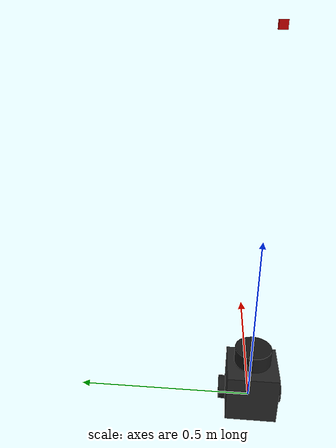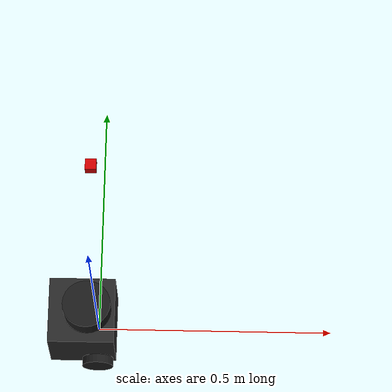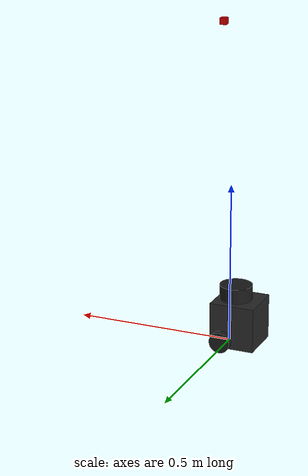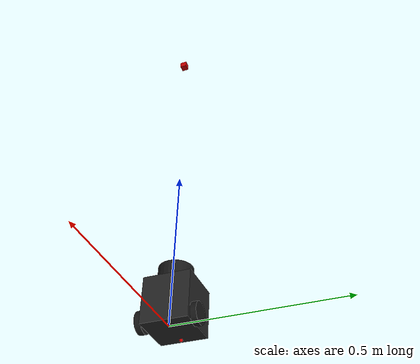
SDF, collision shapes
<?xml version="1.0" ?>
<sdf version="1.5">
  <model name="turtlebot3_burger">
    <pose>0.0 0.0 0.0 0.0 0.0 0.0</pose>

    <link name="base_footprint">
      <inertial>
        <inertia>
          <ixx>0.0000001</ixx>
          <ixy>0.0</ixy>
          <ixz>0.0</ixz>
          <iyy>0.0000001</iyy>
          <iyz>0.0</iyz>
          <izz>0.0000001</izz>
        </inertia>
        <mass>0.0001</mass>
      </inertial>
    </link>

    <link name="base_link">

      <inertial>
        <pose>-0.032 0 0.0 0 0 0</pose>
        <inertia>
          <ixx>0.023</ixx> <!-- 0.0023 helyett -->
          <ixy>0.0</ixy>
          <ixz>0.0</ixz>
          <iyy>0.023</iyy> <!-- 0.0023 helyett -->
          <iyz>0.0</iyz>
          <izz>0.00196</izz>
        </inertia>
        <mass>0.8</mass>
      </inertial>

      <collision name="base_collision">
        <pose>-0.032 0 0.070 0 0 0</pose>
        <geometry>
          <box>
            <size>0.140 0.140 0.140</size>
          </box>
        </geometry>
      </collision>

      <visual name="base_visual">
        <pose>-0.032 0 0 0 0 0</pose>
        <geometry>
          <mesh>
            <uri>model://turtlebot3_common/meshes/burger_base.stl</uri>
            <scale>0.001 0.001 0.001</scale>
          </mesh>
        </geometry>
        <material>
          <ambient>0.1 0.1 0.1 1</ambient>
          <diffuse>0.15 0.15 0.15 1</diffuse>
          <specular>0 0 0 0</specular>
          <emissive>0 0 0 1</emissive>
        </material>
      </visual>
    </link>

    <link name="imu_link">

      <inertial>
        <inertia>
          <ixx>0.0000001</ixx>
          <ixy>0.0</ixy>
          <ixz>0.0</ixz>
          <iyy>0.0000001</iyy>
          <iyz>0.0</iyz>
          <izz>0.0000001</izz>
        </inertia>
        <mass>0.01</mass>
      </inertial>

      <sensor name="tb3_imu" type="imu">
        <always_on>1</always_on>
        <update_rate>50</update_rate>
        <visualize>true</visualize>
        <topic>imu</topic>
        <enable_metrics>true</enable_metrics>
        <gz_frame_id>imu_link</gz_frame_id>
      </sensor>
    </link>

    <link name="base_scan">
      <inertial>
        <pose>-0.020 0 0.0261 0 0 0</pose>
        <inertia>
          <ixx>0.0001</ixx>
          <ixy>0.000</ixy>
          <ixz>0.000</ixz>
          <iyy>0.0001</iyy>
          <iyz>0.000</iyz>
          <izz>0.00014</izz>
        </inertia>
        <mass>0.2</mass>
      </inertial>

      <collision name="lidar_sensor_collision">
        <pose>-0.020 0 0.161 0 0 0</pose>
        <geometry>
          <cylinder>
            <radius>0.0508</radius>
            <length>0.05</length>
          </cylinder>
        </geometry>
      </collision>

      <visual name="lidar_sensor_visual">
        <pose>-0.032 0 0.171 0 0 0</pose>
        <geometry>
          <mesh>
            <uri>model://turtlebot3_common/meshes/lidar.stl</uri>
            <scale>0.001 0.001 0.001</scale>
          </mesh>
        </geometry>
        <material>
          <ambient>0.1 0.1 0.1 1</ambient>
          <diffuse>0.1 0.1 0.1 1</diffuse>
          <specular>0 0 0 0</specular>
          <emissive>0 0 0 1</emissive>
        </material>
      </visual>

      <sensor name="hls_lfcd_lds" type="gpu_lidar">
        <always_on>true</always_on>
        <visualize>true</visualize>
        <pose>-0.032 0 0.171 0 0 0</pose>
        <update_rate>5</update_rate>
        <topic>scan</topic>
        <gz_frame_id>base_scan</gz_frame_id>
        <lidar>
          <scan>
            <horizontal>
              <samples>360</samples>
              <resolution>1.000000</resolution>
              <min_angle>0.000000</min_angle>
              <max_angle>6.28319</max_angle>
            </horizontal>
            <!-- Dirty hack for fake lidar detections with ogre 1 rendering in VM -->
          </scan>
          <range>
            <min>0.120000</min>
            <max>5.5</max>
            <resolution>0.015000</resolution>
          </range>
          <noise>
            <type>gaussian</type>
            <mean>0.0</mean>
            <stddev>0.01</stddev>
          </noise>
        </lidar>
      </sensor>
    </link>

    <link name="wheel_left_link">
      <inertial>
        <pose>0 0.08 0.023 0 1.57 1.57</pose>
        <inertia>
          <ixx>0.0000084</ixx>
          <ixy>0.0</ixy>
          <ixz>0.0</ixz>
          <iyy>0.0000084</iyy>
          <iyz>0.0</iyz>
          <izz>0.000015</izz>
        </inertia>
        <mass>0.028</mass>
      </inertial>

      <collision name="wheel_left_collision">
        <pose>0 0.08 0.023 -1.57 1.57 0</pose>
        <geometry>
          <cylinder>
            <radius>0.033</radius>
            <length>0.018</length>
          </cylinder>
        </geometry>
        <surface>
          <!-- This friction pamareter don't contain reliable data!! -->
          <friction>
            <ode>
              <mu>1</mu>
              <mu2>1</mu2>
              <fdir1>1 0 0</fdir1>
              <slip1>0.0</slip1>
              <slip2>0.0</slip2>
            </ode>
          </friction>
          <contact>
            <ode>
              <kp>500000.0</kp>
              <kd>10.0</kd>
              <max_vel>0.1</max_vel>
              <min_depth>0.001</min_depth>
            </ode>
          </contact>
        </surface>
      </collision>

      <visual name="wheel_left_visual">
        <pose>0 0.08 0.023 0 0 0</pose>
        <geometry>
          <mesh>
            <uri>model://turtlebot3_common/meshes/left_tire.stl</uri>
            <scale>0.001 0.001 0.001</scale>
          </mesh>
        </geometry>
        <material>
          <ambient>0.1 0.1 0.1 1</ambient>
          <diffuse>0.1 0.1 0.1 1</diffuse>
          <specular>0 0 0 0</specular>
          <emissive>0 0 0 1</emissive>
        </material>
      </visual>
    </link>

    <link name="wheel_right_link">
      <inertial>
        <pose>0 -0.08 0.023 0 1.57 1.57</pose>
        <inertia>
          <ixx>0.0000084</ixx>
          <ixy>0.0</ixy>
          <ixz>0.0</ixz>
          <iyy>0.0000084</iyy>
          <iyz>0.0</iyz>
          <izz>0.000015</izz>
        </inertia>
        <mass>0.028</mass>
      </inertial>

      <collision name="wheel_right_collision">
        <pose>0 -0.08 0.023 -1.57 1.57 0</pose>
        <geometry>
          <cylinder>
            <radius>0.033</radius>
            <length>0.018</length>
          </cylinder>
        </geometry>
        <surface>
          <!-- This friction pamareter don't contain reliable data!! -->
          <friction>
            <ode>
              <mu>1</mu>
              <mu2>1</mu2>
              <fdir1>1 0 0</fdir1>
              <slip1>0.0</slip1>
              <slip2>0.0</slip2>
            </ode>
          </friction>
          <contact>
            <ode>
              <kp>500000.0</kp>
              <kd>10.0</kd>
              <max_vel>0.1</max_vel>
              <min_depth>0.001</min_depth>
            </ode>
          </contact>
        </surface>
      </collision>

      <visual name="wheel_right_visual">
        <pose>0 -0.08 0.023 0 0 0</pose>
        <geometry>
          <mesh>
            <uri>model://turtlebot3_common/meshes/right_tire.stl</uri>
            <scale>0.001 0.001 0.001</scale>
          </mesh>
        </geometry>
        <material>
          <ambient>0.1 0.1 0.1 1</ambient>
          <diffuse>0.1 0.1 0.1 1</diffuse>
          <specular>0 0 0 0</specular>
          <emissive>0 0 0 1</emissive>
        </material>
      </visual>
    </link>

    <link name='caster_back_link'>
      <pose>-0.081 0 -0.004 -1.57 0 0</pose>
      <inertial>
        <mass>0.003</mass>
        <inertia>
          <ixx>0.00000005</ixx>
          <ixy>0.000</ixy>
          <ixz>0.000</ixz>
          <iyy>0.00000005</iyy>
          <iyz>0.000</iyz>
          <izz>0.00000005</izz>
        </inertia>
      </inertial>
      <collision name='collision'>
        <geometry>
          <sphere>
            <radius>0.005000</radius>
          </sphere>
        </geometry>
        <surface>
          <contact>
            <ode>
              <soft_cfm>0</soft_cfm>
              <soft_erp>0.2</soft_erp>
              <kp>1e+7</kp>
              <kd>100</kd>
              <max_vel>1.0</max_vel>
              <min_depth>0.001</min_depth>
            </ode>
          </contact>
          <friction>
            <ode>
              <mu>0.1</mu>
              <mu2>0.1</mu2>
              <fdir1>0 1 0</fdir1>
              <slip1>10000.0</slip1>
              <slip2>0.0</slip2>
            </ode>
          </friction>
        </surface>
      </collision>
      <visual name="visual">
        <geometry>
          <sphere>
            <radius>0.005000</radius>
          </sphere>
        </geometry>
        <material>
          <ambient>0.8 0.0 0.0 1</ambient>
          <diffuse>0.8 0.0 0.0 1</diffuse>
          <specular>0 0 0 0</specular>
          <emissive>0 0 0 1</emissive>
        </material>
      </visual>
    </link>

    <link name="camera_link">

      <inertial>
        <pose>0 0 0 0 0 0</pose>
        <inertia>
          <ixx>0.0000075</ixx>
          <ixy>0.0</ixy>
          <ixz>0.0</ixz>
          <iyy>0.0000075</iyy>
          <iyz>0.0</iyz>
          <izz>0.0000075</izz>
        </inertia>
        <mass>0.0005</mass>   <!-- 0.05 helyett -->
      </inertial>

      <collision name="camera_collision">
        <pose>0 0 0 0 0 0</pose>
        <geometry>
          <box>
            <size>0.02 0.02 0.02</size>
          </box>
        </geometry>
      </collision>

      <visual name="camera_visual">
        <pose>0 0 0 0 0 0</pose>
        <geometry>
          <box>
            <size>0.02 0.02 0.02</size>
          </box>
        </geometry>
        <material>
          <ambient>0.8 0 0 1</ambient>
          <diffuse>0.8 0 0 1</diffuse>
          <specular>0 0 0 0</specular>
          <emissive>0 0 0 1</emissive>
        </material>
      </visual>

      <pose>0.03 0 1 0 0 0</pose>
      <sensor name="camera" type="camera">
        <always_on>true</always_on>
        <visualize>true</visualize>
        <update_rate>20</update_rate>
        <topic>image_raw</topic>
        <gz_frame_id>camera_link</gz_frame_id>
        <camera name="intel_realsense_r200">
          <camera_info_topic>camera_info</camera_info_topic>
          <optical_frame_id>camera_link_optical</optical_frame_id>
          <horizontal_fov>1.3962634</horizontal_fov>
          <image>
            <width>640</width>
            <height>480</height>
            <format>R8G8B8</format>
          </image>
          <clip>
            <near>0.1</near>
            <far>150</far>
          </clip>
          <noise>
            <type>gaussian</type>
            <mean>0.0</mean>
            <stddev>0.007</stddev>
          </noise>
        </camera>
      </sensor>
    </link>

    <joint name="base_joint" type="fixed">
      <parent>base_footprint</parent>
      <child>base_link</child>
      <pose>0.0 0.0 0.010 0 0 0</pose>
    </joint>

    <joint name="wheel_left_joint" type="revolute">
      <parent>base_link</parent>
      <child>wheel_left_link</child>
      <pose>0.0 0.08 0.023 0 0 0</pose>
      <axis>
        <xyz>0 1 0</xyz>
        <limit>
          <effort>100</effort>
          <velocity>100</velocity>
          <lower>-inf</lower>
          <upper>inf</upper>
        </limit>
        <dynamics>
          <damping>1</damping>
          <friction>1</friction>
          <spring_reference>0</spring_reference>
          <spring_stiffness>0</spring_stiffness>
        </dynamics>
      </axis>
    </joint>

    <joint name="wheel_right_joint" type="revolute">
      <parent>base_link</parent>
      <child>wheel_right_link</child>
      <pose>0.0 -0.08 0.023 0 0 0</pose>
      <axis>
        <xyz>0 1 0</xyz>
        <limit>
          <effort>100</effort>
          <velocity>100</velocity>
          <lower>-inf</lower>
          <upper>inf</upper>
        </limit>
        <dynamics>
          <damping>1</damping>
          <friction>1</friction>
          <spring_reference>0</spring_reference>
          <spring_stiffness>0</spring_stiffness>
        </dynamics>
      </axis>
    </joint>

    <joint name='caster_back_joint' type='ball'>
      <parent>base_link</parent>
      <child>caster_back_link</child>
    </joint>

    <joint name="imu_joint" type="fixed">
      <parent>base_link</parent>
      <child>imu_link</child>
      <pose>-0.032 0 0.068 0 0 0</pose>
      <axis>
        <xyz>0 0 1</xyz>
      </axis>
    </joint>

    <joint name="lidar_joint" type="fixed">
      <parent>base_link</parent>
      <child>base_scan</child>
      <pose>-0.032 0 0.171 0 0 0</pose>
      <axis>
        <xyz>0 0 1</xyz>
      </axis>
    </joint>

    <joint name="camera_joint" type="fixed">
      <parent>base_link</parent>
      <child>camera_link</child>
      <pose>0.04 0 0.11 0 0.79 0</pose>
      <axis>
        <xyz>0 1 0</xyz>
      </axis>
    </joint>

    <plugin filename="gz-sim-diff-drive-system" name="gz::sim::systems::DiffDrive">
      <!-- wheels -->
      <left_joint>wheel_left_joint</left_joint>
      <right_joint>wheel_right_joint</right_joint>

      <!-- kinematics -->
      <wheel_separation>0.16</wheel_separation>
      <wheel_radius>0.033</wheel_radius>

      <!-- Control gains and limits (optional) -->
      <max_velocity>10</max_velocity>                <!-- Max linear velocity in m/s -->
      <max_linear_acceleration>6</max_linear_acceleration>
      <min_linear_acceleration>-6</min_linear_acceleration>
      <max_angular_acceleration>2.0</max_angular_acceleration>
      <min_angular_acceleration>-2.0</min_angular_acceleration>
      <max_linear_velocity>10</max_linear_velocity>
      <min_linear_velocity>-10</min_linear_velocity>
      <max_angular_velocity>2.0</max_angular_velocity>
      <min_angular_velocity>-2.0</min_angular_velocity>

      <topic>cmd_vel</topic>

      <odom_topic>odom</odom_topic>
      <frame_id>odom</frame_id>
      <tf_topic>tf</tf_topic>
      <odom_publisher_frequency>50</odom_publisher_frequency>
      <child_frame_id>base_footprint</child_frame_id>

    </plugin>

    <plugin filename="gz-sim-joint-state-publisher-system"
      name="gz::sim::systems::JointStatePublisher">
      <topic>joint_states</topic>
      <joint_name>wheel_left_joint</joint_name>
      <joint_name>wheel_right_joint</joint_name>
    </plugin>

    <plugin name="gz::sim::systems::PosePublisher" filename="gz-sim-pose-publisher-system">
      <publish_link_pose>false</publish_link_pose>
      <publish_sensor_pose>false</publish_sensor_pose>
      <publish_model_pose>true</publish_model_pose>
      <publish_collision_pose>false</publish_collision_pose>
      <publish_visual_pose>false</publish_visual_pose>
      <publish_nested_model_pose>true</publish_nested_model_pose>
    </plugin>

  </model>
</sdf>
